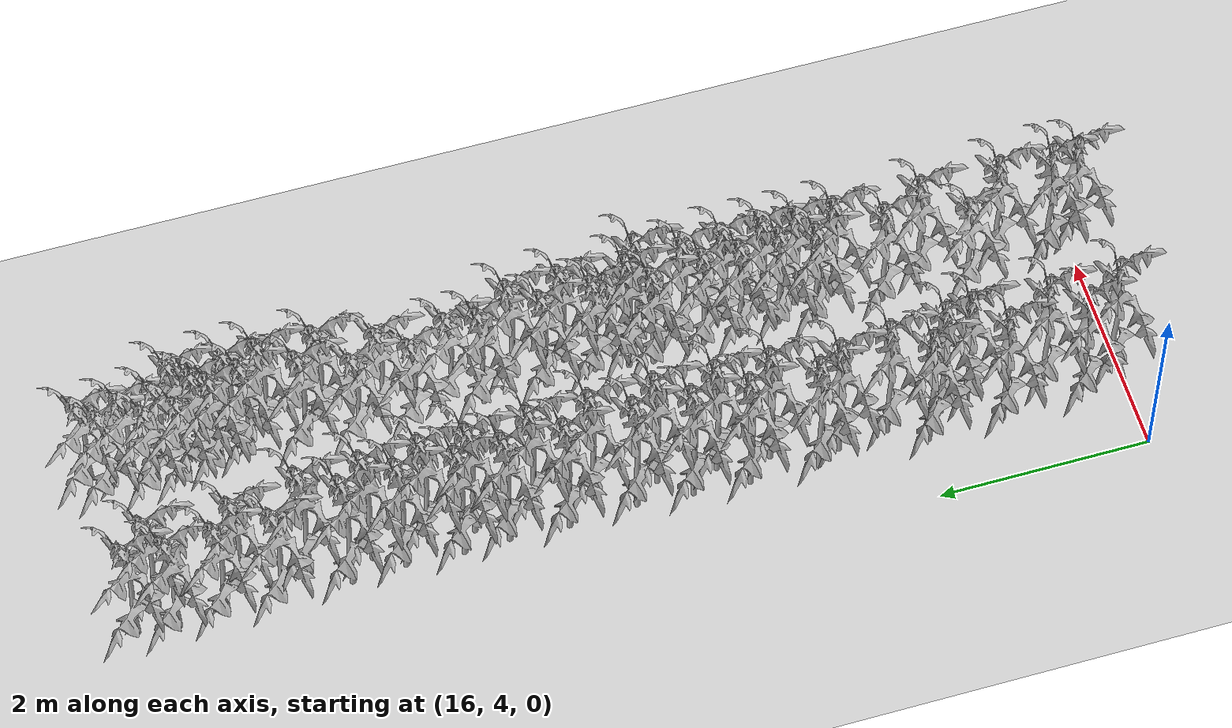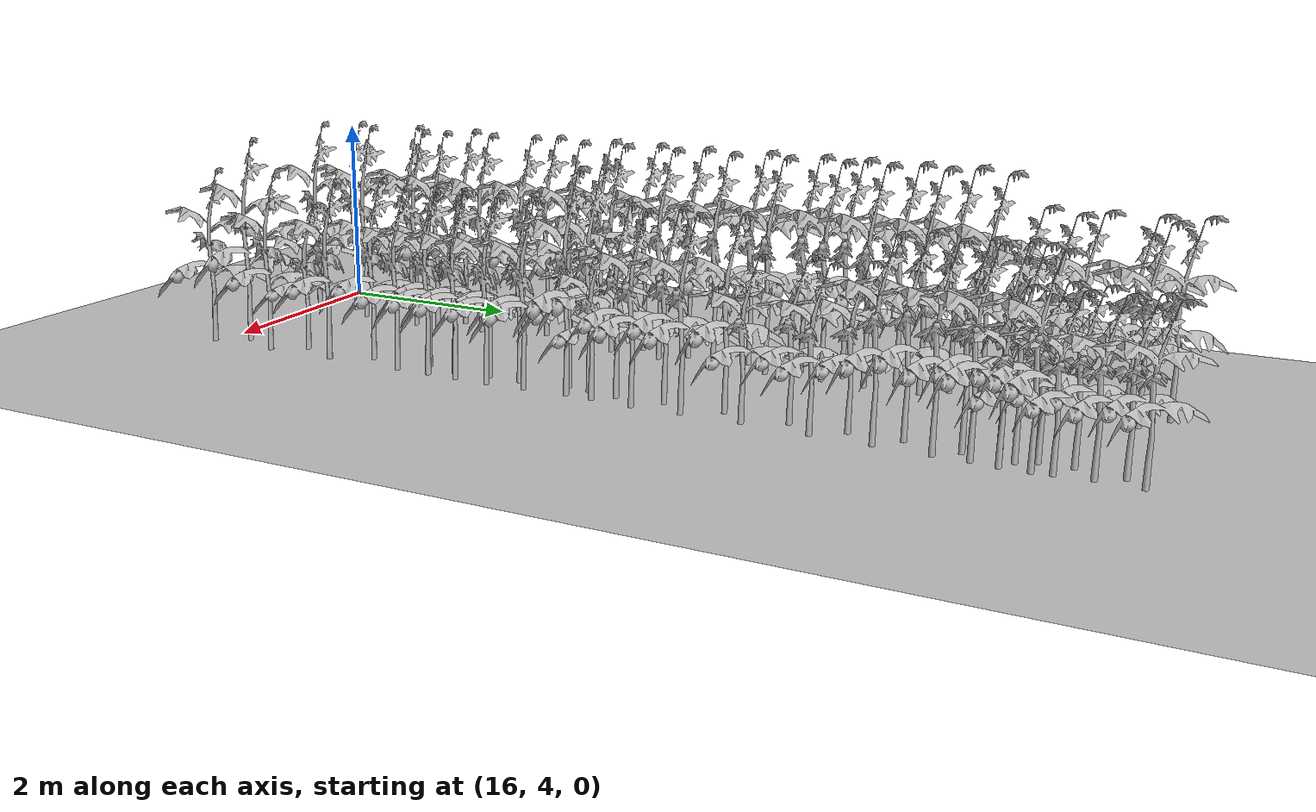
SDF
<sdf version="1.6">
 <world name="default">
  <model name="ground_plane">
   <static>1</static>
   <link name="link">
    <collision name="collision">
     <geometry><plane><normal>0 0 1</normal><size>100 100</size></plane></geometry>
     <surface>
      <contact><collide_bitmask>65535</collide_bitmask></contact>
      <friction><ode><mu>100</mu><mu2>50</mu2></ode></friction>
     </surface>
    </collision>
    <visual name="visual">
     <cast_shadows>0</cast_shadows>
     <geometry><plane><normal>0 0 1</normal><size>100 100</size></plane></geometry>
     <material>
      <script><uri>file://media/materials/scripts/gazebo.material</uri><name>Gazebo/Grey</name></script>
     </material>
    </visual>
   </link>
  </model>
  <model name="tomato_plant_small">
   <static>1</static>
   <link name="link">
    <collision name="collision">
     <geometry>
      <mesh><scale>5e-06 5e-06 5e-06</scale><uri>model://tomato_plant_small/meshes/tomato-plant.dae</uri></mesh>
     </geometry>
    </collision>
    <visual name="visual">
     <geometry>
      <mesh><scale>5e-06 5e-06 5e-06</scale><uri>model://tomato_plant_small/meshes/tomato-plant.dae</uri></mesh>
     </geometry>
    </visual>
   </link>
   <pose>18.3906 13.2946 0 0 -0 0</pose>
  </model>
  <model name="tomato_plant_small_0">
   <static>1</static>
   <link name="link">
    <collision name="collision">
     <geometry>
      <mesh><scale>5e-06 5e-06 5e-06</scale><uri>model://tomato_plant_small/meshes/tomato-plant.dae</uri></mesh>
     </geometry>
    </collision>
    <visual name="visual">
     <geometry>
      <mesh><scale>5e-06 5e-06 5e-06</scale><uri>model://tomato_plant_small/meshes/tomato-plant.dae</uri></mesh>
     </geometry>
    </visual>
   </link>
   <pose>18.2442 13.1328 0 0 -0 0</pose>
  </model>
  <model name="tomato_plant_small_1">
   <static>1</static>
   <link name="link">
    <collision name="collision">
     <geometry>
      <mesh><scale>5e-06 5e-06 5e-06</scale><uri>model://tomato_plant_small/meshes/tomato-plant.dae</uri></mesh>
     </geometry>
    </collision>
    <visual name="visual">
     <geometry>
      <mesh><scale>5e-06 5e-06 5e-06</scale><uri>model://tomato_plant_small/meshes/tomato-plant.dae</uri></mesh>
     </geometry>
    </visual>
   </link>
   <pose>18.3727 12.9067 0 0 -0 0</pose>
  </model>
  <model name="tomato_plant_small_2">
   <static>1</static>
   <link name="link">
    <collision name="collision">
     <geometry>
      <mesh><scale>5e-06 5e-06 5e-06</scale><uri>model://tomato_plant_small/meshes/tomato-plant.dae</uri></mesh>
     </geometry>
    </collision>
    <visual name="visual">
     <geometry>
      <mesh><scale>5e-06 5e-06 5e-06</scale><uri>model://tomato_plant_small/meshes/tomato-plant.dae</uri></mesh>
     </geometry>
    </visual>
   </link>
   <pose>18.177 12.7212 0 0 -0 0</pose>
  </model>
  <model name="tomato_plant_small_3">
   <static>1</static>
   <link name="link">
    <collision name="collision">
     <geometry>
      <mesh><scale>5e-06 5e-06 5e-06</scale><uri>model://tomato_plant_small/meshes/tomato-plant.dae</uri></mesh>
     </geometry>
    </collision>
    <visual name="visual">
     <geometry>
      <mesh><scale>5e-06 5e-06 5e-06</scale><uri>model://tomato_plant_small/meshes/tomato-plant.dae</uri></mesh>
     </geometry>
    </visual>
   </link>
   <pose>18.4025 12.5943 0 0 -0 0</pose>
  </model>
  <model name="tomato_plant_small_4">
   <static>1</static>
   <link name="link">
    <collision name="collision">
     <geometry>
      <mesh><scale>5e-06 5e-06 5e-06</scale><uri>model://tomato_plant_small/meshes/tomato-plant.dae</uri></mesh>
     </geometry>
    </collision>
    <visual name="visual">
     <geometry>
      <mesh><scale>5e-06 5e-06 5e-06</scale><uri>model://tomato_plant_small/meshes/tomato-plant.dae</uri></mesh>
     </geometry>
    </visual>
   </link>
   <pose>18.183 12.4332 0 0 -0 0</pose>
  </model>
  <model name="tomato_plant_medium">
   <static>1</static>
   <link name="link">
    <collision name="collision">
     <geometry>
      <mesh><scale>5e-06 5e-06 6e-06</scale><uri>model://tomato_plant_medium/meshes/tomato-plant.dae</uri></mesh>
     </geometry>
    </collision>
    <visual name="visual">
     <geometry>
      <mesh><scale>5e-06 5e-06 6e-06</scale><uri>model://tomato_plant_medium/meshes/tomato-plant.dae</uri></mesh>
     </geometry>
    </visual>
   </link>
   <pose>18.4262 12.4256 0 0 -0 0</pose>
  </model>
  <model name="tomato_plant_medium_0">
   <static>1</static>
   <link name="link">
    <collision name="collision">
     <geometry>
      <mesh><scale>5e-06 5e-06 6e-06</scale><uri>model://tomato_plant_medium/meshes/tomato-plant.dae</uri></mesh>
     </geometry>
    </collision>
    <visual name="visual">
     <geometry>
      <mesh><scale>5e-06 5e-06 6e-06</scale><uri>model://tomato_plant_medium/meshes/tomato-plant.dae</uri></mesh>
     </geometry>
    </visual>
   </link>
   <pose>18.2674 12.2643 0 0 -0 0</pose>
  </model>
  <model name="tomato_plant_small_5">
   <static>1</static>
   <link name="link">
    <collision name="collision">
     <geometry>
      <mesh><scale>5e-06 5e-06 5e-06</scale><uri>model://tomato_plant_small/meshes/tomato-plant.dae</uri></mesh>
     </geometry>
    </collision>
    <visual name="visual">
     <geometry>
      <mesh><scale>5e-06 5e-06 5e-06</scale><uri>model://tomato_plant_small/meshes/tomato-plant.dae</uri></mesh>
     </geometry>
    </visual>
   </link>
   <pose>18.4269 12.17 0 0 -0 0</pose>
  </model>
  <model name="tomato_plant_medium_1">
   <static>1</static>
   <link name="link">
    <collision name="collision">
     <geometry>
      <mesh><scale>5e-06 5e-06 6e-06</scale><uri>model://tomato_plant_medium/meshes/tomato-plant.dae</uri></mesh>
     </geometry>
    </collision>
    <visual name="visual">
     <geometry>
      <mesh><scale>5e-06 5e-06 6e-06</scale><uri>model://tomato_plant_medium/meshes/tomato-plant.dae</uri></mesh>
     </geometry>
    </visual>
   </link>
   <pose>18.1753 12.12 0 0 -0 0</pose>
  </model>
  <model name="tomato_plant_medium_2">
   <static>1</static>
   <link name="link">
    <collision name="collision">
     <geometry>
      <mesh><scale>5e-06 5e-06 6e-06</scale><uri>model://tomato_plant_medium/meshes/tomato-plant.dae</uri></mesh>
     </geometry>
    </collision>
    <visual name="visual">
     <geometry>
      <mesh><scale>5e-06 5e-06 6e-06</scale><uri>model://tomato_plant_medium/meshes/tomato-plant.dae</uri></mesh>
     </geometry>
    </visual>
   </link>
   <pose>18.3969 11.9326 0 0 -0 0</pose>
  </model>
  <model name="tomato_plant_medium_3">
   <static>1</static>
   <link name="link">
    <collision name="collision">
     <geometry>
      <mesh><scale>5e-06 5e-06 6e-06</scale><uri>model://tomato_plant_medium/meshes/tomato-plant.dae</uri></mesh>
     </geometry>
    </collision>
    <visual name="visual">
     <geometry>
      <mesh><scale>5e-06 5e-06 6e-06</scale><uri>model://tomato_plant_medium/meshes/tomato-plant.dae</uri></mesh>
     </geometry>
    </visual>
   </link>
   <pose>18.2308 11.8231 0 0 -0 0</pose>
  </model>
  <model name="tomato_plant_medium_4">
   <static>1</static>
   <link name="link">
    <collision name="collision">
     <geometry>
      <mesh><scale>5e-06 5e-06 6e-06</scale><uri>model://tomato_plant_medium/meshes/tomato-plant.dae</uri></mesh>
     </geometry>
    </collision>
    <visual name="visual">
     <geometry>
      <mesh><scale>5e-06 5e-06 6e-06</scale><uri>model://tomato_plant_medium/meshes/tomato-plant.dae</uri></mesh>
     </geometry>
    </visual>
   </link>
   <pose>18.4029 11.6188 0 0 -0 0</pose>
  </model>
  <model name="tomato_plant_medium_5">
   <static>1</static>
   <link name="link">
    <collision name="collision">
     <geometry>
      <mesh><scale>5e-06 5e-06 6e-06</scale><uri>model://tomato_plant_medium/meshes/tomato-plant.dae</uri></mesh>
     </geometry>
    </collision>
    <visual name="visual">
     <geometry>
      <mesh><scale>5e-06 5e-06 6e-06</scale><uri>model://tomato_plant_medium/meshes/tomato-plant.dae</uri></mesh>
     </geometry>
    </visual>
   </link>
   <pose>18.1705 11.3133 0 0 -0 0</pose>
  </model>
  <model name="tomato_plant_medium_6">
   <static>1</static>
   <link name="link">
    <collision name="collision">
     <geometry>
      <mesh><scale>5e-06 5e-06 6e-06</scale><uri>model://tomato_plant_medium/meshes/tomato-plant.dae</uri></mesh>
     </geometry>
    </collision>
    <visual name="visual">
     <geometry>
      <mesh><scale>5e-06 5e-06 6e-06</scale><uri>model://tomato_plant_medium/meshes/tomato-plant.dae</uri></mesh>
     </geometry>
    </visual>
   </link>
   <pose>18.3846 11.1035 0 0 -0 0</pose>
  </model>
  <model name="tomato_plant_small_6">
   <static>1</static>
   <link name="link">
    <collision name="collision">
     <geometry>
      <mesh><scale>5e-06 5e-06 5e-06</scale><uri>model://tomato_plant_small/meshes/tomato-plant.dae</uri></mesh>
     </geometry>
    </collision>
    <visual name="visual">
     <geometry>
      <mesh><scale>5e-06 5e-06 5e-06</scale><uri>model://tomato_plant_small/meshes/tomato-plant.dae</uri></mesh>
     </geometry>
    </visual>
   </link>
   <pose>18.1771 10.8197 0 0 -0 0</pose>
  </model>
  <model name="tomato_plant_small_7">
   <static>1</static>
   <link name="link">
    <collision name="collision">
     <geometry>
      <mesh><scale>5e-06 5e-06 5e-06</scale><uri>model://tomato_plant_small/meshes/tomato-plant.dae</uri></mesh>
     </geometry>
    </collision>
    <visual name="visual">
     <geometry>
      <mesh><scale>5e-06 5e-06 5e-06</scale><uri>model://tomato_plant_small/meshes/tomato-plant.dae</uri></mesh>
     </geometry>
    </visual>
   </link>
   <pose>18.3809 10.5421 0 0 -0 0</pose>
  </model>
  <model name="tomato_plant_small_8">
   <static>1</static>
   <link name="link">
    <collision name="collision">
     <geometry>
      <mesh><scale>5e-06 5e-06 5e-06</scale><uri>model://tomato_plant_small/meshes/tomato-plant.dae</uri></mesh>
     </geometry>
    </collision>
    <visual name="visual">
     <geometry>
      <mesh><scale>5e-06 5e-06 5e-06</scale><uri>model://tomato_plant_small/meshes/tomato-plant.dae</uri></mesh>
     </geometry>
    </visual>
   </link>
   <pose>18.1815 10.2855 0 0 -0 0</pose>
  </model>
  <model name="tomato_plant_small_9">
   <static>1</static>
   <link name="link">
    <collision name="collision">
     <geometry>
      <mesh><scale>5e-06 5e-06 5e-06</scale><uri>model://tomato_plant_small/meshes/tomato-plant.dae</uri></mesh>
     </geometry>
    </collision>
    <visual name="visual">
     <geometry>
      <mesh><scale>5e-06 5e-06 5e-06</scale><uri>model://tomato_plant_small/meshes/tomato-plant.dae</uri></mesh>
     </geometry>
    </visual>
   </link>
   <pose>18.3529 9.90063 0 0 -0 0</pose>
  </model>
  <model name="tomato_plant_medium_7">
   <static>1</static>
   <link name="link">
    <collision name="collision">
     <geometry>
      <mesh><scale>5e-06 5e-06 6e-06</scale><uri>model://tomato_plant_medium/meshes/tomato-plant.dae</uri></mesh>
     </geometry>
    </collision>
    <visual name="visual">
     <geometry>
      <mesh><scale>5e-06 5e-06 6e-06</scale><uri>model://tomato_plant_medium/meshes/tomato-plant.dae</uri></mesh>
     </geometry>
    </visual>
   </link>
   <pose>18.1551 9.65907 0 0 -0 0</pose>
  </model>
  <model name="tomato_plant_medium_8">
   <static>1</static>
   <link name="link">
    <collision name="collision">
     <geometry>
      <mesh><scale>5e-06 5e-06 6e-06</scale><uri>model://tomato_plant_medium/meshes/tomato-plant.dae</uri></mesh>
     </geometry>
    </collision>
    <visual name="visual">
     <geometry>
      <mesh><scale>5e-06 5e-06 6e-06</scale><uri>model://tomato_plant_medium/meshes/tomato-plant.dae</uri></mesh>
     </geometry>
    </visual>
   </link>
   <pose>18.3601 9.32044 0 0 -0 0</pose>
  </model>
  <model name="tomato_plant_medium_9">
   <static>1</static>
   <link name="link">
    <collision name="collision">
     <geometry>
      <mesh><scale>5e-06 5e-06 6e-06</scale><uri>model://tomato_plant_medium/meshes/tomato-plant.dae</uri></mesh>
     </geometry>
    </collision>
    <visual name="visual">
     <geometry>
      <mesh><scale>5e-06 5e-06 6e-06</scale><uri>model://tomato_plant_medium/meshes/tomato-plant.dae</uri></mesh>
     </geometry>
    </visual>
   </link>
   <pose>18.1626 9.06322 0 0 -0 0</pose>
  </model>
  <model name="tomato_plant_medium_10">
   <static>1</static>
   <link name="link">
    <collision name="collision">
     <geometry>
      <mesh><scale>5e-06 5e-06 6e-06</scale><uri>model://tomato_plant_medium/meshes/tomato-plant.dae</uri></mesh>
     </geometry>
    </collision>
    <visual name="visual">
     <geometry>
      <mesh><scale>5e-06 5e-06 6e-06</scale><uri>model://tomato_plant_medium/meshes/tomato-plant.dae</uri></mesh>
     </geometry>
    </visual>
   </link>
   <pose>16.9196 13.0316 0 0 -0 0</pose>
  </model>
  <model name="tomato_plant_medium_11">
   <static>1</static>
   <link name="link">
    <collision name="collision">
     <geometry>
      <mesh><scale>5e-06 5e-06 6e-06</scale><uri>model://tomato_plant_medium/meshes/tomato-plant.dae</uri></mesh>
     </geometry>
    </collision>
    <visual name="visual">
     <geometry>
      <mesh><scale>5e-06 5e-06 6e-06</scale><uri>model://tomato_plant_medium/meshes/tomato-plant.dae</uri></mesh>
     </geometry>
    </visual>
   </link>
   <pose>16.6663 12.9 0 0 -0 0</pose>
  </model>
  <model name="tomato_plant_medium_12">
   <static>1</static>
   <link name="link">
    <collision name="collision">
     <geometry>
      <mesh><scale>5e-06 5e-06 6e-06</scale><uri>model://tomato_plant_medium/meshes/tomato-plant.dae</uri></mesh>
     </geometry>
    </collision>
    <visual name="visual">
     <geometry>
      <mesh><scale>5e-06 5e-06 6e-06</scale><uri>model://tomato_plant_medium/meshes/tomato-plant.dae</uri></mesh>
     </geometry>
    </visual>
   </link>
   <pose>16.7001 13.2713 0.021757 0 -0 0</pose>
  </model>
  <model name="tomato_plant_medium_13">
   <static>1</static>
   <link name="link">
    <collision name="collision">
     <geometry>
      <mesh><scale>5e-06 5e-06 6e-06</scale><uri>model://tomato_plant_medium/meshes/tomato-plant.dae</uri></mesh>
     </geometry>
    </collision>
    <visual name="visual">
     <geometry>
      <mesh><scale>5e-06 5e-06 6e-06</scale><uri>model://tomato_plant_medium/meshes/tomato-plant.dae</uri></mesh>
     </geometry>
    </visual>
   </link>
   <pose>16.683 12.4521 0 0 -0 0</pose>
  </model>
  <model name="tomato_plant_medium_14">
   <static>1</static>
   <link name="link">
    <collision name="collision">
     <geometry>
      <mesh><scale>5e-06 5e-06 6e-06</scale><uri>model://tomato_plant_medium/meshes/tomato-plant.dae</uri></mesh>
     </geometry>
    </collision>
    <visual name="visual">
     <geometry>
      <mesh><scale>5e-06 5e-06 6e-06</scale><uri>model://tomato_plant_medium/meshes/tomato-plant.dae</uri></mesh>
     </geometry>
    </visual>
   </link>
   <pose>16.8879 12.2541 0 0 -0 0</pose>
  </model>
  <model name="tomato_plant_medium_15">
   <static>1</static>
   <link name="link">
    <collision name="collision">
     <geometry>
      <mesh><scale>5e-06 5e-06 6e-06</scale><uri>model://tomato_plant_medium/meshes/tomato-plant.dae</uri></mesh>
     </geometry>
    </collision>
    <visual name="visual">
     <geometry>
      <mesh><scale>5e-06 5e-06 6e-06</scale><uri>model://tomato_plant_medium/meshes/tomato-plant.dae</uri></mesh>
     </geometry>
    </visual>
   </link>
   <pose>16.6728 11.9349 0 0 -0 0</pose>
  </model>
  <model name="tomato_plant_big">
   <static>1</static>
   <link name="link">
    <collision name="collision">
     <geometry>
      <mesh><scale>5e-06 5e-06 6e-06</scale><uri>model://tomato_plant_big/meshes/tomato-plant.dae</uri></mesh>
     </geometry>
    </collision>
    <visual name="visual">
     <geometry>
      <mesh><scale>5e-06 5e-06 7e-06</scale><uri>model://tomato_plant_big/meshes/tomato-plant.dae</uri></mesh>
     </geometry>
    </visual>
   </link>
   <pose>16.8575 11.6462 0 0 -0 0</pose>
  </model>
  <model name="tomato_plant_big_0">
   <static>1</static>
   <link name="link">
    <collision name="collision">
     <geometry>
      <mesh><scale>5e-06 5e-06 6e-06</scale><uri>model://tomato_plant_big/meshes/tomato-plant.dae</uri></mesh>
     </geometry>
    </collision>
    <visual name="visual">
     <geometry>
      <mesh><scale>5e-06 5e-06 7e-06</scale><uri>model://tomato_plant_big/meshes/tomato-plant.dae</uri></mesh>
     </geometry>
    </visual>
   </link>
   <pose>16.6663 11.3037 0 0 -0 0</pose>
  </model>
  <model name="tomato_plant_big_1">
   <static>1</static>
   <link name="link">
    <collision name="collision">
     <geometry>
      <mesh><scale>5e-06 5e-06 6e-06</scale><uri>model://tomato_plant_big/meshes/tomato-plant.dae</uri></mesh>
     </geometry>
    </collision>
    <visual name="visual">
     <geometry>
      <mesh><scale>5e-06 5e-06 7e-06</scale><uri>model://tomato_plant_big/meshes/tomato-plant.dae</uri></mesh>
     </geometry>
    </visual>
   </link>
   <pose>16.851 11.0689 0 0 -0 0</pose>
  </model>
  <model name="tomato_plant_big_2">
   <static>1</static>
   <link name="link">
    <collision name="collision">
     <geometry>
      <mesh><scale>5e-06 5e-06 6e-06</scale><uri>model://tomato_plant_big/meshes/tomato-plant.dae</uri></mesh>
     </geometry>
    </collision>
    <visual name="visual">
     <geometry>
      <mesh><scale>5e-06 5e-06 7e-06</scale><uri>model://tomato_plant_big/meshes/tomato-plant.dae</uri></mesh>
     </geometry>
    </visual>
   </link>
   <pose>16.6968 10.7975 0 0 -0 0</pose>
  </model>
  <model name="tomato_plant_big_3">
   <static>1</static>
   <link name="link">
    <collision name="collision">
     <geometry>
      <mesh><scale>5e-06 5e-06 6e-06</scale><uri>model://tomato_plant_big/meshes/tomato-plant.dae</uri></mesh>
     </geometry>
    </collision>
    <visual name="visual">
     <geometry>
      <mesh><scale>5e-06 5e-06 7e-06</scale><uri>model://tomato_plant_big/meshes/tomato-plant.dae</uri></mesh>
     </geometry>
    </visual>
   </link>
   <pose>16.8713 10.5362 0 0 -0 0</pose>
  </model>
  <model name="tomato_plant_big_4">
   <static>1</static>
   <link name="link">
    <collision name="collision">
     <geometry>
      <mesh><scale>5e-06 5e-06 6e-06</scale><uri>model://tomato_plant_big/meshes/tomato-plant.dae</uri></mesh>
     </geometry>
    </collision>
    <visual name="visual">
     <geometry>
      <mesh><scale>5e-06 5e-06 7e-06</scale><uri>model://tomato_plant_big/meshes/tomato-plant.dae</uri></mesh>
     </geometry>
    </visual>
   </link>
   <pose>16.6745 10.2599 0 0 -0 0</pose>
  </model>
  <model name="tomato_plant_big_5">
   <static>1</static>
   <link name="link">
    <collision name="collision">
     <geometry>
      <mesh><scale>5e-06 5e-06 6e-06</scale><uri>model://tomato_plant_big/meshes/tomato-plant.dae</uri></mesh>
     </geometry>
    </collision>
    <visual name="visual">
     <geometry>
      <mesh><scale>5e-06 5e-06 7e-06</scale><uri>model://tomato_plant_big/meshes/tomato-plant.dae</uri></mesh>
     </geometry>
    </visual>
   </link>
   <pose>16.865 10.1107 0 0 -0 0</pose>
  </model>
  <model name="tomato_plant_big_6">
   <static>1</static>
   <link name="link">
    <collision name="collision">
     <geometry>
      <mesh><scale>5e-06 5e-06 6e-06</scale><uri>model://tomato_plant_big/meshes/tomato-plant.dae</uri></mesh>
     </geometry>
    </collision>
    <visual name="visual">
     <geometry>
      <mesh><scale>5e-06 5e-06 7e-06</scale><uri>model://tomato_plant_big/meshes/tomato-plant.dae</uri></mesh>
     </geometry>
    </visual>
   </link>
   <pose>16.6882 9.83508 0 0 -0 0</pose>
  </model>
  <model name="tomato_plant_big_7">
   <static>1</static>
   <link name="link">
    <collision name="collision">
     <geometry>
      <mesh><scale>5e-06 5e-06 6e-06</scale><uri>model://tomato_plant_big/meshes/tomato-plant.dae</uri></mesh>
     </geometry>
    </collision>
    <visual name="visual">
     <geometry>
      <mesh><scale>5e-06 5e-06 7e-06</scale><uri>model://tomato_plant_big/meshes/tomato-plant.dae</uri></mesh>
     </geometry>
    </visual>
   </link>
   <pose>16.8909 9.54383 0 0 -0 0</pose>
  </model>
  <model name="tomato_plant_big_8">
   <static>1</static>
   <link name="link">
    <collision name="collision">
     <geometry>
      <mesh><scale>5e-06 5e-06 6e-06</scale><uri>model://tomato_plant_big/meshes/tomato-plant.dae</uri></mesh>
     </geometry>
    </collision>
    <visual name="visual">
     <geometry>
      <mesh><scale>5e-06 5e-06 7e-06</scale><uri>model://tomato_plant_big/meshes/tomato-plant.dae</uri></mesh>
     </geometry>
    </visual>
   </link>
   <pose>16.6704 9.2785 0 0 -0 0</pose>
  </model>
  <model name="tomato_plant_big_9">
   <static>1</static>
   <link name="link">
    <collision name="collision">
     <geometry>
      <mesh><scale>5e-06 5e-06 6e-06</scale><uri>model://tomato_plant_big/meshes/tomato-plant.dae</uri></mesh>
     </geometry>
    </collision>
    <visual name="visual">
     <geometry>
      <mesh><scale>5e-06 5e-06 7e-06</scale><uri>model://tomato_plant_big/meshes/tomato-plant.dae</uri></mesh>
     </geometry>
    </visual>
   </link>
   <pose>16.8893 8.98824 0 0 -0 0</pose>
  </model>
  <model name="tomato_plant_big_10">
   <static>1</static>
   <link name="link">
    <collision name="collision">
     <geometry>
      <mesh><scale>5e-06 5e-06 6e-06</scale><uri>model://tomato_plant_big/meshes/tomato-plant.dae</uri></mesh>
     </geometry>
    </collision>
    <visual name="visual">
     <geometry>
      <mesh><scale>5e-06 5e-06 7e-06</scale><uri>model://tomato_plant_big/meshes/tomato-plant.dae</uri></mesh>
     </geometry>
    </visual>
   </link>
   <pose>16.7063 8.63368 0 0 -0 0</pose>
  </model>
  <model name="tomato_plant_big_11">
   <static>1</static>
   <link name="link">
    <collision name="collision">
     <geometry>
      <mesh><scale>5e-06 5e-06 6e-06</scale><uri>model://tomato_plant_big/meshes/tomato-plant.dae</uri></mesh>
     </geometry>
    </collision>
    <visual name="visual">
     <geometry>
      <mesh><scale>5e-06 5e-06 7e-06</scale><uri>model://tomato_plant_big/meshes/tomato-plant.dae</uri></mesh>
     </geometry>
    </visual>
   </link>
   <pose>16.8886 8.38831 0 0 -0 0</pose>
  </model>
  <model name="tomato_plant_medium_16">
   <static>1</static>
   <link name="link">
    <collision name="collision">
     <geometry>
      <mesh><scale>5e-06 5e-06 6e-06</scale><uri>model://tomato_plant_medium/meshes/tomato-plant.dae</uri></mesh>
     </geometry>
    </collision>
    <visual name="visual">
     <geometry>
      <mesh><scale>5e-06 5e-06 6e-06</scale><uri>model://tomato_plant_medium/meshes/tomato-plant.dae</uri></mesh>
     </geometry>
    </visual>
   </link>
   <pose>18.3739 8.83297 0 0 -0 0</pose>
  </model>
  <model name="tomato_plant_medium_17">
   <static>1</static>
   <link name="link">
    <collision name="collision">
     <geometry>
      <mesh><scale>5e-06 5e-06 6e-06</scale><uri>model://tomato_plant_medium/meshes/tomato-plant.dae</uri></mesh>
     </geometry>
    </collision>
    <visual name="visual">
     <geometry>
      <mesh><scale>5e-06 5e-06 6e-06</scale><uri>model://tomato_plant_medium/meshes/tomato-plant.dae</uri></mesh>
     </geometry>
    </visual>
   </link>
   <pose>18.193 8.58456 0 0 -0 0</pose>
  </model>
  <model name="tomato_plant_small_10">
   <static>1</static>
   <link name="link">
    <collision name="collision">
     <geometry>
      <mesh><scale>5e-06 5e-06 5e-06</scale><uri>model://tomato_plant_small/meshes/tomato-plant.dae</uri></mesh>
     </geometry>
    </collision>
    <visual name="visual">
     <geometry>
      <mesh><scale>5e-06 5e-06 5e-06</scale><uri>model://tomato_plant_small/meshes/tomato-plant.dae</uri></mesh>
     </geometry>
    </visual>
   </link>
   <pose>18.3539 8.40984 0 0 -0 0</pose>
  </model>
  <model name="tomato_plant_big_12">
   <static>1</static>
   <link name="link">
    <collision name="collision">
     <geometry>
      <mesh><scale>5e-06 5e-06 6e-06</scale><uri>model://tomato_plant_big/meshes/tomato-plant.dae</uri></mesh>
     </geometry>
    </collision>
    <visual name="visual">
     <geometry>
      <mesh><scale>5e-06 5e-06 7e-06</scale><uri>model://tomato_plant_big/meshes/tomato-plant.dae</uri></mesh>
     </geometry>
    </visual>
   </link>
   <pose>18.1506 8.27583 0 0 -0 0</pose>
  </model>
  <model name="tomato_plant_big_13">
   <static>1</static>
   <link name="link">
    <collision name="collision">
     <geometry>
      <mesh><scale>5e-06 5e-06 6e-06</scale><uri>model://tomato_plant_big/meshes/tomato-plant.dae</uri></mesh>
     </geometry>
    </collision>
    <visual name="visual">
     <geometry>
      <mesh><scale>5e-06 5e-06 7e-06</scale><uri>model://tomato_plant_big/meshes/tomato-plant.dae</uri></mesh>
     </geometry>
    </visual>
   </link>
   <pose>18.3371 8.13851 0 0 -0 0</pose>
  </model>
  <model name="tomato_plant_medium_18">
   <static>1</static>
   <link name="link">
    <collision name="collision">
     <geometry>
      <mesh><scale>5e-06 5e-06 6e-06</scale><uri>model://tomato_plant_medium/meshes/tomato-plant.dae</uri></mesh>
     </geometry>
    </collision>
    <visual name="visual">
     <geometry>
      <mesh><scale>5e-06 5e-06 6e-06</scale><uri>model://tomato_plant_medium/meshes/tomato-plant.dae</uri></mesh>
     </geometry>
    </visual>
   </link>
   <pose>18.1249 8.04721 0 0 -0 0</pose>
  </model>
  <model name="tomato_plant_medium_19">
   <static>1</static>
   <link name="link">
    <collision name="collision">
     <geometry>
      <mesh><scale>5e-06 5e-06 6e-06</scale><uri>model://tomato_plant_medium/meshes/tomato-plant.dae</uri></mesh>
     </geometry>
    </collision>
    <visual name="visual">
     <geometry>
      <mesh><scale>5e-06 5e-06 6e-06</scale><uri>model://tomato_plant_medium/meshes/tomato-plant.dae</uri></mesh>
     </geometry>
    </visual>
   </link>
   <pose>18.3581 7.68979 0 0 -0 0</pose>
  </model>
  <model name="tomato_plant_big_14">
   <static>1</static>
   <link name="link">
    <collision name="collision">
     <geometry>
      <mesh><scale>5e-06 5e-06 6e-06</scale><uri>model://tomato_plant_big/meshes/tomato-plant.dae</uri></mesh>
     </geometry>
    </collision>
    <visual name="visual">
     <geometry>
      <mesh><scale>5e-06 5e-06 7e-06</scale><uri>model://tomato_plant_big/meshes/tomato-plant.dae</uri></mesh>
     </geometry>
    </visual>
   </link>
   <pose>16.6728 8.11093 0 0 -0 0</pose>
  </model>
  <model name="tomato_plant_big_15">
   <static>1</static>
   <link name="link">
    <collision name="collision">
     <geometry>
      <mesh><scale>5e-06 5e-06 6e-06</scale><uri>model://tomato_plant_big/meshes/tomato-plant.dae</uri></mesh>
     </geometry>
    </collision>
    <visual name="visual">
     <geometry>
      <mesh><scale>5e-06 5e-06 7e-06</scale><uri>model://tomato_plant_big/meshes/tomato-plant.dae</uri></mesh>
     </geometry>
    </visual>
   </link>
   <pose>16.8657 7.83324 0 0 -0 0</pose>
  </model>
  <model name="tomato_plant_big_16">
   <static>1</static>
   <link name="link">
    <collision name="collision">
     <geometry>
      <mesh><scale>5e-06 5e-06 6e-06</scale><uri>model://tomato_plant_big/meshes/tomato-plant.dae</uri></mesh>
     </geometry>
    </collision>
    <visual name="visual">
     <geometry>
      <mesh><scale>5e-06 5e-06 7e-06</scale><uri>model://tomato_plant_big/meshes/tomato-plant.dae</uri></mesh>
     </geometry>
    </visual>
   </link>
   <pose>16.6437 7.58312 0 0 -0 0</pose>
  </model>
  <model name="tomato_plant_big_17">
   <static>1</static>
   <link name="link">
    <collision name="collision">
     <geometry>
      <mesh><scale>5e-06 5e-06 6e-06</scale><uri>model://tomato_plant_big/meshes/tomato-plant.dae</uri></mesh>
     </geometry>
    </collision>
    <visual name="visual">
     <geometry>
      <mesh><scale>5e-06 5e-06 7e-06</scale><uri>model://tomato_plant_big/meshes/tomato-plant.dae</uri></mesh>
     </geometry>
    </visual>
   </link>
   <pose>16.8453 7.3331 0 0 -0 0</pose>
  </model>
  <model name="tomato_plant_big_18">
   <static>1</static>
   <link name="link">
    <collision name="collision">
     <geometry>
      <mesh><scale>5e-06 5e-06 6e-06</scale><uri>model://tomato_plant_big/meshes/tomato-plant.dae</uri></mesh>
     </geometry>
    </collision>
    <visual name="visual">
     <geometry>
      <mesh><scale>5e-06 5e-06 7e-06</scale><uri>model://tomato_plant_big/meshes/tomato-plant.dae</uri></mesh>
     </geometry>
    </visual>
   </link>
   <pose>16.6313 6.93426 0 0 -0 0</pose>
  </model>
  <model name="tomato_plant_big_19">
   <static>1</static>
   <link name="link">
    <collision name="collision">
     <geometry>
      <mesh><scale>5e-06 5e-06 6e-06</scale><uri>model://tomato_plant_big/meshes/tomato-plant.dae</uri></mesh>
     </geometry>
    </collision>
    <visual name="visual">
     <geometry>
      <mesh><scale>5e-06 5e-06 7e-06</scale><uri>model://tomato_plant_big/meshes/tomato-plant.dae</uri></mesh>
     </geometry>
    </visual>
   </link>
   <pose>16.8073 6.22622 0 0 -0 0</pose>
  </model>
  <model name="tomato_plant_big_20">
   <static>1</static>
   <link name="link">
    <collision name="collision">
     <geometry>
      <mesh><scale>5e-06 5e-06 6e-06</scale><uri>model://tomato_plant_big/meshes/tomato-plant.dae</uri></mesh>
     </geometry>
    </collision>
    <visual name="visual">
     <geometry>
      <mesh><scale>5e-06 5e-06 7e-06</scale><uri>model://tomato_plant_big/meshes/tomato-plant.dae</uri></mesh>
     </geometry>
    </visual>
   </link>
   <pose>16.6107 5.88926 0 0 -0 0</pose>
  </model>
  <model name="tomato_plant_big_21">
   <static>1</static>
   <link name="link">
    <collision name="collision">
     <geometry>
      <mesh><scale>5e-06 5e-06 6e-06</scale><uri>model://tomato_plant_big/meshes/tomato-plant.dae</uri></mesh>
     </geometry>
    </collision>
    <visual name="visual">
     <geometry>
      <mesh><scale>5e-06 5e-06 7e-06</scale><uri>model://tomato_plant_big/meshes/tomato-plant.dae</uri></mesh>
     </geometry>
    </visual>
   </link>
   <pose>16.8602 5.69264 0 0 -0 0</pose>
  </model>
  <model name="tomato_plant_medium_20">
   <static>1</static>
   <link name="link">
    <collision name="collision">
     <geometry>
      <mesh><scale>5e-06 5e-06 6e-06</scale><uri>model://tomato_plant_medium/meshes/tomato-plant.dae</uri></mesh>
     </geometry>
    </collision>
    <visual name="visual">
     <geometry>
      <mesh><scale>5e-06 5e-06 6e-06</scale><uri>model://tomato_plant_medium/meshes/tomato-plant.dae</uri></mesh>
     </geometry>
    </visual>
   </link>
   <pose>18.1876 7.54288 0 0 -0 0</pose>
  </model>
  <model name="tomato_plant_medium_21">
   <static>1</static>
   <link name="link">
    <collision name="collision">
     <geometry>
      <mesh><scale>5e-06 5e-06 6e-06</scale><uri>model://tomato_plant_medium/meshes/tomato-plant.dae</uri></mesh>
     </geometry>
    </collision>
    <visual name="visual">
     <geometry>
      <mesh><scale>5e-06 5e-06 6e-06</scale><uri>model://tomato_plant_medium/meshes/tomato-plant.dae</uri></mesh>
     </geometry>
    </visual>
   </link>
   <pose>18.3867 7.29336 0 0 -0 0</pose>
  </model>
  <model name="tomato_plant_medium_22">
   <static>1</static>
   <link name="link">
    <collision name="collision">
     <geometry>
      <mesh><scale>5e-06 5e-06 6e-06</scale><uri>model://tomato_plant_medium/meshes/tomato-plant.dae</uri></mesh>
     </geometry>
    </collision>
    <visual name="visual">
     <geometry>
      <mesh><scale>5e-06 5e-06 6e-06</scale><uri>model://tomato_plant_medium/meshes/tomato-plant.dae</uri></mesh>
     </geometry>
    </visual>
   </link>
   <pose>18.1767 7.19997 0 0 -0 0</pose>
  </model>
  <model name="tomato_plant_medium_23">
   <static>1</static>
   <link name="link">
    <collision name="collision">
     <geometry>
      <mesh><scale>5e-06 5e-06 6e-06</scale><uri>model://tomato_plant_medium/meshes/tomato-plant.dae</uri></mesh>
     </geometry>
    </collision>
    <visual name="visual">
     <geometry>
      <mesh><scale>5e-06 5e-06 6e-06</scale><uri>model://tomato_plant_medium/meshes/tomato-plant.dae</uri></mesh>
     </geometry>
    </visual>
   </link>
   <pose>18.3724 6.9311 0 0 -0 0</pose>
  </model>
  <model name="tomato_plant_medium_24">
   <static>1</static>
   <link name="link">
    <collision name="collision">
     <geometry>
      <mesh><scale>5e-06 5e-06 6e-06</scale><uri>model://tomato_plant_medium/meshes/tomato-plant.dae</uri></mesh>
     </geometry>
    </collision>
    <visual name="visual">
     <geometry>
      <mesh><scale>5e-06 5e-06 6e-06</scale><uri>model://tomato_plant_medium/meshes/tomato-plant.dae</uri></mesh>
     </geometry>
    </visual>
   </link>
   <pose>18.2114 6.81646 0 0 -0 0</pose>
  </model>
  <model name="tomato_plant_medium_25">
   <static>1</static>
   <link name="link">
    <collision name="collision">
     <geometry>
      <mesh><scale>5e-06 5e-06 6e-06</scale><uri>model://tomato_plant_medium/meshes/tomato-plant.dae</uri></mesh>
     </geometry>
    </collision>
    <visual name="visual">
     <geometry>
      <mesh><scale>5e-06 5e-06 6e-06</scale><uri>model://tomato_plant_medium/meshes/tomato-plant.dae</uri></mesh>
     </geometry>
    </visual>
   </link>
   <pose>18.365 6.61197 0 0 -0 0</pose>
  </model>
  <model name="tomato_plant_medium_26">
   <static>1</static>
   <link name="link">
    <collision name="collision">
     <geometry>
      <mesh><scale>5e-06 5e-06 6e-06</scale><uri>model://tomato_plant_medium/meshes/tomato-plant.dae</uri></mesh>
     </geometry>
    </collision>
    <visual name="visual">
     <geometry>
      <mesh><scale>5e-06 5e-06 6e-06</scale><uri>model://tomato_plant_medium/meshes/tomato-plant.dae</uri></mesh>
     </geometry>
    </visual>
   </link>
   <pose>18.1476 6.48023 0 0 -0 0</pose>
  </model>
  <model name="tomato_plant_medium_27">
   <static>1</static>
   <link name="link">
    <collision name="collision">
     <geometry>
      <mesh><scale>5e-06 5e-06 6e-06</scale><uri>model://tomato_plant_medium/meshes/tomato-plant.dae</uri></mesh>
     </geometry>
    </collision>
    <visual name="visual">
     <geometry>
      <mesh><scale>5e-06 5e-06 6e-06</scale><uri>model://tomato_plant_medium/meshes/tomato-plant.dae</uri></mesh>
     </geometry>
    </visual>
   </link>
   <pose>18.3649 6.24824 0 0 -0 0</pose>
  </model>
  <model name="tomato_plant_big_23">
   <static>1</static>
   <link name="link">
    <collision name="collision">
     <geometry>
      <mesh><scale>5e-06 5e-06 6e-06</scale><uri>model://tomato_plant_big/meshes/tomato-plant.dae</uri></mesh>
     </geometry>
    </collision>
    <visual name="visual">
     <geometry>
      <mesh><scale>5e-06 5e-06 7e-06</scale><uri>model://tomato_plant_big/meshes/tomato-plant.dae</uri></mesh>
     </geometry>
    </visual>
   </link>
   <pose>16.8918 5.43474 0 0 -0 0</pose>
  </model>
  <model name="tomato_plant_big_24">
   <static>1</static>
   <link name="link">
    <collision name="collision">
     <geometry>
      <mesh><scale>5e-06 5e-06 6e-06</scale><uri>model://tomato_plant_big/meshes/tomato-plant.dae</uri></mesh>
     </geometry>
    </collision>
    <visual name="visual">
     <geometry>
      <mesh><scale>5e-06 5e-06 7e-06</scale><uri>model://tomato_plant_big/meshes/tomato-plant.dae</uri></mesh>
     </geometry>
    </visual>
   </link>
   <pose>16.6268 5.17489 0 0 -0 0</pose>
  </model>
  <model name="tomato_plant_big_25">
   <static>1</static>
   <link name="link">
    <collision name="collision">
     <geometry>
      <mesh><scale>5e-06 5e-06 6e-06</scale><uri>model://tomato_plant_big/meshes/tomato-plant.dae</uri></mesh>
     </geometry>
    </collision>
    <visual name="visual">
     <geometry>
      <mesh><scale>5e-06 5e-06 7e-06</scale><uri>model://tomato_plant_big/meshes/tomato-plant.dae</uri></mesh>
     </geometry>
    </visual>
   </link>
   <pose>16.8466 4.72193 0 0 -0 0</pose>
  </model>
  <model name="tomato_plant_big_26">
   <static>1</static>
   <link name="link">
    <collision name="collision">
     <geometry>
      <mesh><scale>5e-06 5e-06 6e-06</scale><uri>model://tomato_plant_big/meshes/tomato-plant.dae</uri></mesh>
     </geometry>
    </collision>
    <visual name="visual">
     <geometry>
      <mesh><scale>5e-06 5e-06 7e-06</scale><uri>model://tomato_plant_big/meshes/tomato-plant.dae</uri></mesh>
     </geometry>
    </visual>
   </link>
   <pose>16.6396 4.42277 0 0 -0 0</pose>
  </model>
  <model name="tomato_plant_big_27">
   <static>1</static>
   <link name="link">
    <collision name="collision">
     <geometry>
      <mesh><scale>5e-06 5e-06 6e-06</scale><uri>model://tomato_plant_big/meshes/tomato-plant.dae</uri></mesh>
     </geometry>
    </collision>
    <visual name="visual">
     <geometry>
      <mesh><scale>5e-06 5e-06 7e-06</scale><uri>model://tomato_plant_big/meshes/tomato-plant.dae</uri></mesh>
     </geometry>
    </visual>
   </link>
   <pose>16.8454 4.06482 0 0 -0 0</pose>
  </model>
  <model name="tomato_plant_big_37">
   <static>1</static>
   <link name="link">
    <collision name="collision">
     <geometry>
      <mesh><scale>5e-06 5e-06 6e-06</scale><uri>model://tomato_plant_big/meshes/tomato-plant.dae</uri></mesh>
     </geometry>
    </collision>
    <visual name="visual">
     <geometry>
      <mesh><scale>5e-06 5e-06 7e-06</scale><uri>model://tomato_plant_big/meshes/tomato-plant.dae</uri></mesh>
     </geometry>
    </visual>
   </link>
   <pose>16.7476 6.70737 0 0 -0 0</pose>
  </model>
  <model name="tomato_plant_medium_32">
   <static>1</static>
   <link name="link">
    <collision name="collision">
     <geometry>
      <mesh><scale>5e-06 5e-06 6e-06</scale><uri>model://tomato_plant_medium/meshes/tomato-plant.dae</uri></mesh>
     </geometry>
    </collision>
    <visual name="visual">
     <geometry>
      <mesh><scale>5e-06 5e-06 6e-06</scale><uri>model://tomato_plant_medium/meshes/tomato-plant.dae</uri></mesh>
     </geometry>
    </visual>
   </link>
   <pose>18.1739 5.82004 0 0 -0 0</pose>
  </model>
  <model name="tomato_plant_medium_33">
   <static>1</static>
   <link name="link">
    <collision name="collision">
     <geometry>
      <mesh><scale>5e-06 5e-06 6e-06</scale><uri>model://tomato_plant_medium/meshes/tomato-plant.dae</uri></mesh>
     </geometry>
    </collision>
    <visual name="visual">
     <geometry>
      <mesh><scale>5e-06 5e-06 6e-06</scale><uri>model://tomato_plant_medium/meshes/tomato-plant.dae</uri></mesh>
     </geometry>
    </visual>
   </link>
   <pose>18.3653 5.41338 0 0 -0 0</pose>
  </model>
  <model name="tomato_plant_small_11">
   <static>1</static>
   <link name="link">
    <collision name="collision">
     <geometry>
      <mesh><scale>5e-06 5e-06 5e-06</scale><uri>model://tomato_plant_small/meshes/tomato-plant.dae</uri></mesh>
     </geometry>
    </collision>
    <visual name="visual">
     <geometry>
      <mesh><scale>5e-06 5e-06 5e-06</scale><uri>model://tomato_plant_small/meshes/tomato-plant.dae</uri></mesh>
     </geometry>
    </visual>
   </link>
   <pose>18.175 4.98787 0 0 -0 0</pose>
  </model>
  <model name="tomato_plant_medium_34">
   <static>1</static>
   <link name="link">
    <collision name="collision">
     <geometry>
      <mesh><scale>5e-06 5e-06 6e-06</scale><uri>model://tomato_plant_medium/meshes/tomato-plant.dae</uri></mesh>
     </geometry>
    </collision>
    <visual name="visual">
     <geometry>
      <mesh><scale>5e-06 5e-06 6e-06</scale><uri>model://tomato_plant_medium/meshes/tomato-plant.dae</uri></mesh>
     </geometry>
    </visual>
   </link>
   <pose>18.3683 4.65636 0 0 -0 0</pose>
  </model>
  <model name="tomato_plant_big_38">
   <static>1</static>
   <link name="link">
    <collision name="collision">
     <geometry>
      <mesh><scale>5e-06 5e-06 6e-06</scale><uri>model://tomato_plant_big/meshes/tomato-plant.dae</uri></mesh>
     </geometry>
    </collision>
    <visual name="visual">
     <geometry>
      <mesh><scale>5e-06 5e-06 7e-06</scale><uri>model://tomato_plant_big/meshes/tomato-plant.dae</uri></mesh>
     </geometry>
    </visual>
   </link>
   <pose>18.185 4.22717 0 0 -0 0</pose>
  </model>
  <model name="tomato_plant_medium_35">
   <static>1</static>
   <link name="link">
    <collision name="collision">
     <geometry>
      <mesh><scale>5e-06 5e-06 6e-06</scale><uri>model://tomato_plant_medium/meshes/tomato-plant.dae</uri></mesh>
     </geometry>
    </collision>
    <visual name="visual">
     <geometry>
      <mesh><scale>5e-06 5e-06 6e-06</scale><uri>model://tomato_plant_medium/meshes/tomato-plant.dae</uri></mesh>
     </geometry>
    </visual>
   </link>
   <pose>18.3633 3.9067 0 0 -0 0</pose>
  </model>
 </world>
</sdf>
